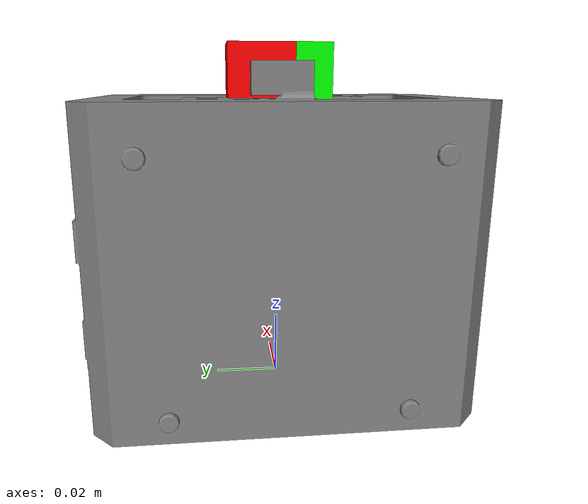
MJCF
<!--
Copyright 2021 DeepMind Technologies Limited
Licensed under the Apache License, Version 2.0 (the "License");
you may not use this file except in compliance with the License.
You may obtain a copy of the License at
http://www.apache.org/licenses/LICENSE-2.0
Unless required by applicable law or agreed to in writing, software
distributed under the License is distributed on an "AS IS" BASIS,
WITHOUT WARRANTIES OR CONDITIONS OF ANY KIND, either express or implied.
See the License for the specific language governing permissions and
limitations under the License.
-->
<mujoco>
  <compiler meshdir="meshes"/>
  <statistic extent="1.5" meansize=".05"/>

  <option timestep="0.005" jacobian="sparse"/>
  <include file="schunk_pg70.xml"/>

  <visual>
    <rgba haze="0.15 0.25 0.35 1"/>
    <quality shadowsize="4096"/>
    <map stiffness="700" shadowscale="0.5" fogstart="10" fogend="15" zfar="40" haze="0.3"/>
  </visual>

  <asset>
    <texture type="skybox" builtin="gradient" rgb1="0.3 0.5 0.7" rgb2="0 0 0" width="512" height="512"/>
    <texture name="texplane" type="2d" builtin="checker" rgb1=".2 .3 .4" rgb2=".1 0.15 0.2"
      width="512" height="512" mark="cross" markrgb=".8 .8 .8"/>
    <material name="matplane" reflectance="0.3" texture="texplane" texrepeat="1 1" texuniform="true"/>
  </asset>

  <worldbody>
    <light directional="true" diffuse=".4 .4 .4" specular="0.1 0.1 0.1" pos="0 0 5.0" dir="0 0 -1" castshadow="false"/>
    <light directional="true" diffuse=".6 .6 .6" specular="0.2 0.2 0.2" pos="0 0 4" dir="0 0 -1"/>

  </worldbody>
</mujoco>

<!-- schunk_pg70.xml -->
<mujoco model="pg70">
  <compiler angle="radian" meshdir="meshes"/>

  <asset>
    <mesh name="pg70" file="pg70/pg70.stl" />
  </asset>

  <worldbody>
    <light name="top" pos="0 0 2" mode="trackcom"/>
    <body name="pg70_palm_link">
      <inertial pos="0 0 0" mass="1" diaginertia="0.01 0.01 0.01" />
      <geom type="mesh" mesh="pg70" />
      <body name="pg70_finger_left_link" pos="0 0.0055 0.0789">
        <inertial pos="0 0 0" mass="1" diaginertia="0.01 0.01 0.01" />
        <joint name="pg70_finger_left_joint" axis="0 1 0" type="slide" range="-0.001 0.0301" actuatorfrcrange="-10 10" />
        <geom size="0.01 0.01 0.03" type="box" rgba="1 0 0 1" />
      </body>
      <body name="pg70_finger_right_link" pos="0 -0.0055 0.0789">
        <inertial pos="0 0 0" mass="1" diaginertia="0.01 0.01 0.01" />
        <joint name="pg70_finger_right_joint" axis="0 -1 0" type="slide" range="-0.001 0.0301" actuatorfrcrange="-10 10" />
        <geom size="0.01 0.01 0.03" type="box" rgba="0 1 0 1" />
      </body>
    </body>
  </worldbody>

  <actuator>
    <position kp="100" ctrllimited="true" ctrlrange="-0.001 0.0301" joint="pg70_finger_left_joint"/>
    <position kp="100" ctrllimited="true" ctrlrange="-0.001 0.0301" joint="pg70_finger_right_joint"/>
  </actuator>
</mujoco>
